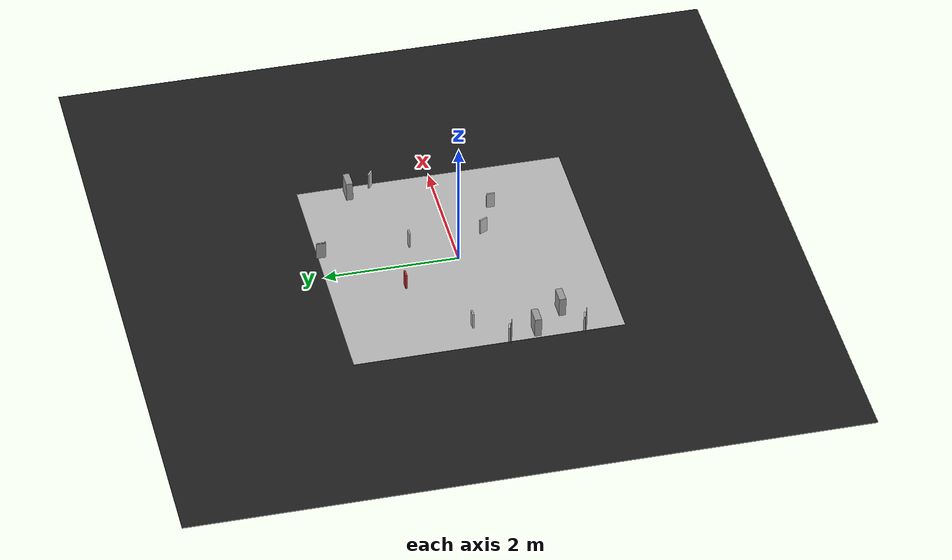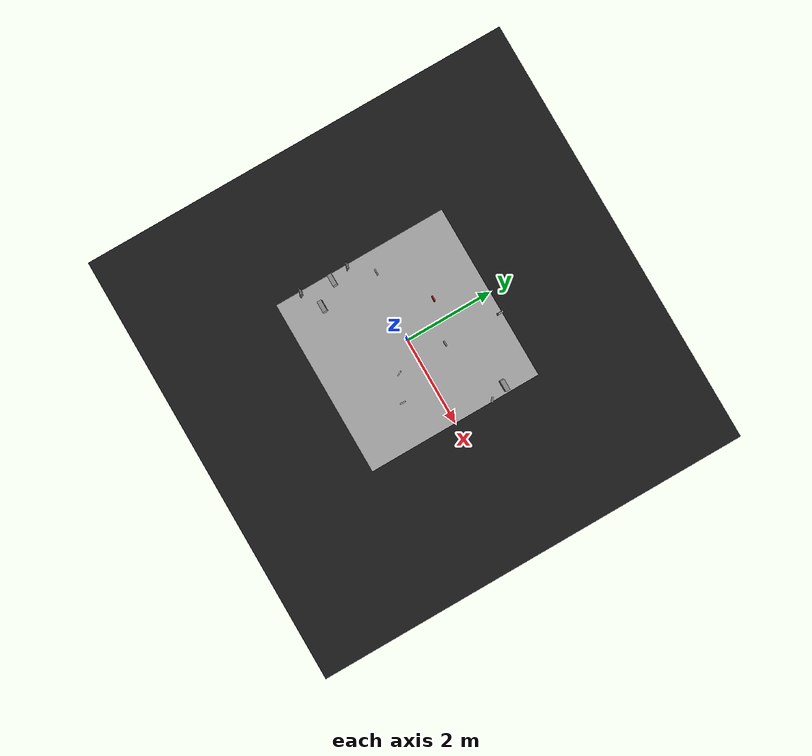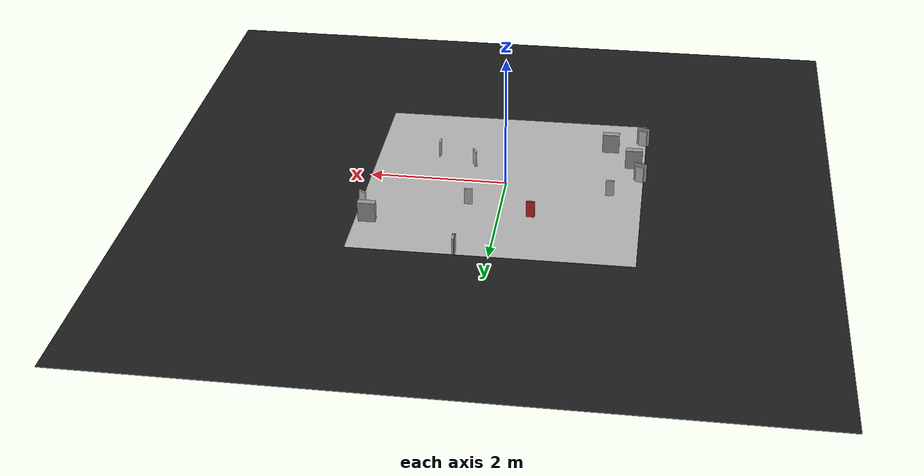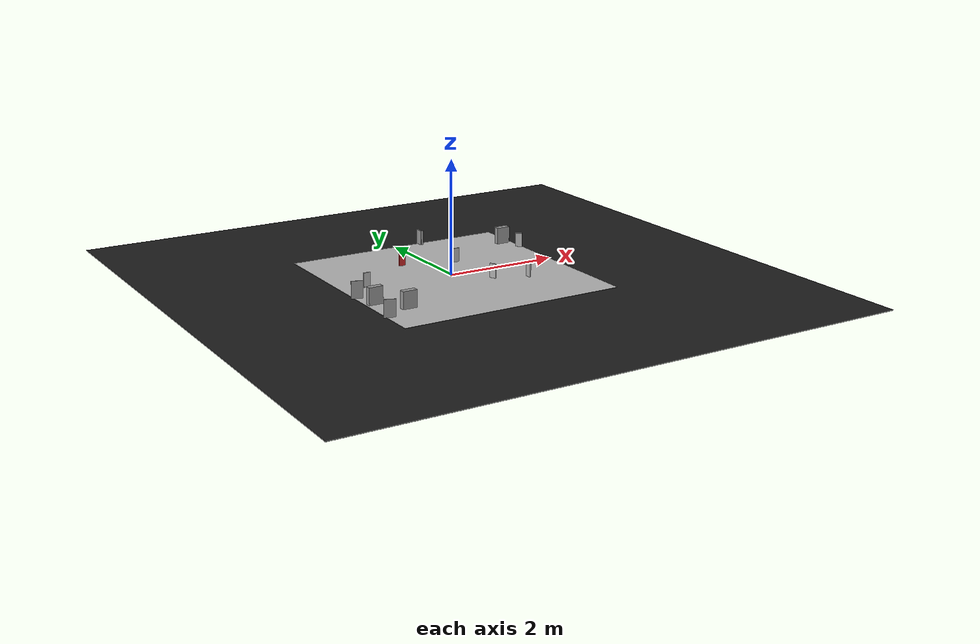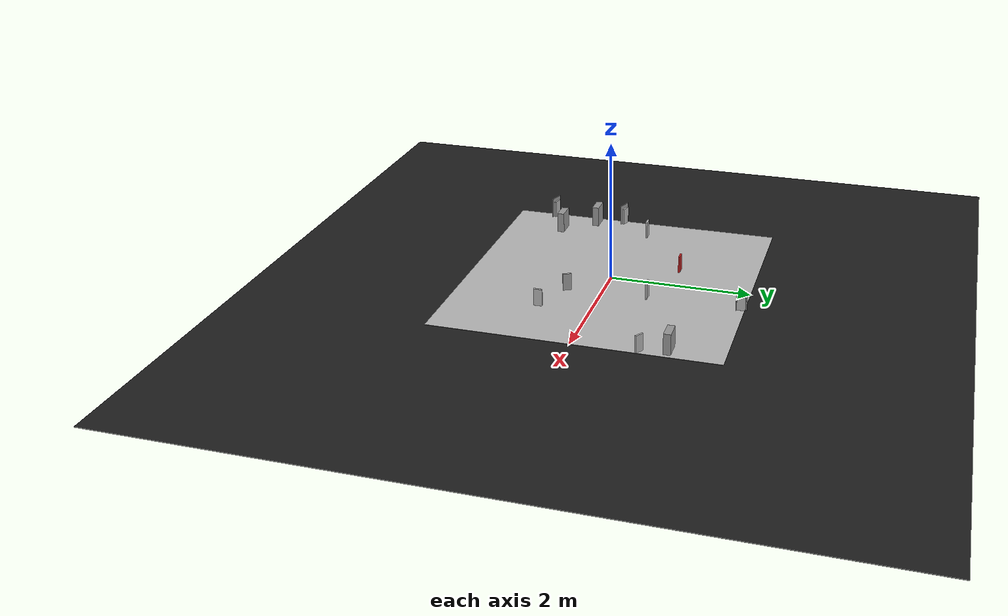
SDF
<sdf version="1.7">
 <world name="default">
  <scene>
   <ambient>0.8 0.8 0.8 1</ambient>
   <shadows>0</shadows>
   <grid>0</grid>
   <background>0.7 0.7 0.7 1</background>
  </scene>
  <model name="course">
   <static>1</static>
   <link name="course_link">
    <collision name="course_collision">
     <geometry><plane><normal>0 0 1</normal><size>4 4</size></plane></geometry>
     <surface><friction><ode><mu>100</mu><mu2>50</mu2></ode></friction></surface>
    </collision>
    <visual name="course_visual">
     <cast_shadows>0</cast_shadows>
     <geometry><plane><normal>0 0 1</normal><size>4 4</size></plane></geometry>
     <material>
      <script>
       <uri>model://turtlebot3_autorace_2020/course/materials/scripts</uri>
       <uri>model://turtlebot3_autorace_2020/course/materials/textures</uri>
       <name>course</name>
      </script>
     </material>
    </visual>
   </link>
   <pose>0 0 0 0 0 -3.14</pose>
  </model>
  <model name="traffic_parking">
   <static>1</static>
   <link name="box">
    <collision name="collision"><geometry><box><size>0.12 0.025 0.25</size></box></geometry></collision>
    <visual name="visual">
     <geometry><box><size>0.12 0.025 0.25</size></box></geometry>
     <material>
      <script>
       <uri>model://turtlebot3_autorace_2020/traffic_parking/materials/scripts</uri>
       <uri>model://turtlebot3_autorace_2020/traffic_parking/materials/textures</uri>
       <name>traffic_parking</name>
      </script>
     </material>
    </visual>
   </link>
   <pose>0.489828 1.9498 0.13 0 0 -1.57</pose>
  </model>
  <model name="traffic_construction">
   <static>1</static>
   <link name="box">
    <collision name="collision"><geometry><box><size>0.12 0.025 0.25</size></box></geometry></collision>
    <visual name="visual">
     <geometry><box><size>0.12 0.025 0.25</size></box></geometry>
     <material>
      <script>
       <uri>model://turtlebot3_autorace_2020/traffic_construction/materials/scripts</uri>
       <uri>model://turtlebot3_autorace_2020/traffic_construction/materials/textures</uri>
       <name>traffic_construction</name>
      </script>
     </material>
    </visual>
   </link>
   <pose>1.95069 0.900881 0.125 0 0 -0.600669</pose>
  </model>
  <model name="traffic_noentry">
   <static>1</static>
   <link name="box">
    <collision name="collision"><geometry><box><size>0.12 0.025 0.25</size></box></geometry></collision>
    <visual name="visual">
     <geometry><box><size>0.12 0.025 0.25</size></box></geometry>
     <material>
      <script>
       <uri>model://turtlebot3_autorace_2020/traffic_noentry/materials/scripts</uri>
       <uri>model://turtlebot3_autorace_2020/traffic_noentry/materials/textures</uri>
       <name>traffic_noentry</name>
      </script>
     </material>
    </visual>
   </link>
   <pose>0.464784 0.63954 0.125 0 -0 0</pose>
  </model>
  <model name="traffic_right">
   <static>1</static>
   <link name="box">
    <collision name="collision"><geometry><box><size>0.12 0.025 0.25</size></box></geometry></collision>
    <visual name="visual">
     <geometry><box><size>0.12 0.025 0.25</size></box></geometry>
     <material>
      <script>
       <uri>model://turtlebot3_autorace_2020/traffic_right/materials/scripts</uri>
       <uri>model://turtlebot3_autorace_2020/traffic_right/materials/textures</uri>
       <name>traffic_right</name>
      </script>
     </material>
    </visual>
   </link>
   <pose>1.08 -0.728 0.125 0 0 -1.57</pose>
  </model>
  <light name="sun" type="directional">
   <pose>0 0 10 0 -0 0</pose>
   <diffuse>0.8 0.8 0.8 1</diffuse>
   <specular>0.1 0.1 0.1 1</specular>
   <attenuation>
    <range>1000</range>
    <constant>0.9</constant>
    <linear>0.01</linear>
    <quadratic>0.001</quadratic>
   </attenuation>
   <direction>-0.5 0.5 -1</direction>
   <spot><inner_angle>0</inner_angle><outer_angle>0</outer_angle><falloff>0</falloff></spot>
  </light>
  <model name="ground2">
   <pose>0.234384 0.016409 -0.1 0 -0 0</pose>
   <static>1</static>
   <link name="ground">
    <collision name="ground_coll"><geometry><box><size>8 8 0.01</size></box></geometry></collision>
    <visual name="ground_vis">
     <geometry><box><size>10 10 0.01</size></box></geometry>
     <material>
      <script><uri>file://media/materials/scripts/gazebo.material</uri><name>Gazebo/FlatBlack</name></script>
     </material>
    </visual>
   </link>
  </model>
  <gravity>0 0 -9.8</gravity>
  <magnetic_field>6e-06 2.3e-05 -4.2e-05</magnetic_field>
  <atmosphere type="adiabatic"/>
  <physics name="default_physics" default="0" type="ode">
   <max_step_size>0.001</max_step_size>
   <real_time_factor>1</real_time_factor>
   <real_time_update_rate>1000</real_time_update_rate>
  </physics>
  <spherical_coordinates>
   <surface_model>EARTH_WGS84</surface_model>
   <latitude_deg>0</latitude_deg>
   <longitude_deg>0</longitude_deg>
   <elevation>0</elevation>
   <heading_deg>0</heading_deg>
  </spherical_coordinates>
  <light name="user_point_light_1" type="point">
   <pose>-1.64815 0.604519 1 0 -0 0</pose>
   <diffuse>0.5 0.5 0.5 1</diffuse>
   <specular>0.1 0.1 0.1 1</specular>
   <attenuation>
    <range>20</range>
    <constant>0.5</constant>
    <linear>0.01</linear>
    <quadratic>0.001</quadratic>
   </attenuation>
   <cast_shadows>0</cast_shadows>
   <direction>0 0 -1</direction>
   <spot><inner_angle>0</inner_angle><outer_angle>0</outer_angle><falloff>0</falloff></spot>
  </light>
  <light name="user_point_light_2" type="point">
   <pose>1.63854 1.69565 1 0 -0 0</pose>
   <diffuse>0.5 0.5 0.5 1</diffuse>
   <specular>0.1 0.1 0.1 1</specular>
   <attenuation>
    <range>20</range>
    <constant>0.5</constant>
    <linear>0.01</linear>
    <quadratic>0.001</quadratic>
   </attenuation>
   <cast_shadows>0</cast_shadows>
   <direction>0 0 -1</direction>
   <spot><inner_angle>0</inner_angle><outer_angle>0</outer_angle><falloff>0</falloff></spot>
  </light>
  <light name="user_point_light_3" type="point">
   <pose>0.42 -3.31 1 0 -0 0</pose>
   <diffuse>0.5 0.5 0.5 1</diffuse>
   <specular>0.1 0.1 0.1 1</specular>
   <attenuation>
    <range>20</range>
    <constant>0.5</constant>
    <linear>0.01</linear>
    <quadratic>0.001</quadratic>
   </attenuation>
   <cast_shadows>0</cast_shadows>
   <direction>0 0 -1</direction>
   <spot><inner_angle>0</inner_angle><outer_angle>0</outer_angle><falloff>0</falloff></spot>
  </light>
  <model name="barrier_3">
   <link name="link">
    <inertial>
     <mass>1</mass>
     <inertia>
      <ixx>0.166667</ixx>
      <ixy>0</ixy>
      <ixz>0</ixz>
      <iyy>0.166667</iyy>
      <iyz>0</iyz>
      <izz>0.166667</izz>
     </inertia>
    </inertial>
    <visual name="visual">
     <geometry><box><size>0.25 0.1 0.3</size></box></geometry>
     <material>
      <script><name>Gazebo/Grey</name><uri>file://media/materials/scripts/gazebo.material</uri></script>
      <shader type="pixel"><normal_map>__default__</normal_map></shader>
      <ambient>0.3 0.3 0.3 1</ambient>
      <diffuse>0.7 0.7 0.7 1</diffuse>
      <specular>0.01 0.01 0.01 1</specular>
      <emissive>0 0 0 1</emissive>
     </material>
    </visual>
    <collision name="collision">
     <geometry><box><size>0.25 0.1 0.3</size></box></geometry>
     <surface>
      <friction>
       <ode><mu>1</mu><mu2>1</mu2><fdir1>0 0 0</fdir1><slip1>0</slip1><slip2>0</slip2></ode>
       <torsional>
        <coefficient>1</coefficient>
        <patch_radius>0</patch_radius>
        <surface_radius>0</surface_radius>
        <use_patch_radius>1</use_patch_radius>
        <ode><slip>0</slip></ode>
       </torsional>
      </friction>
      <bounce><restitution_coefficient>0</restitution_coefficient><threshold>1e+06</threshold></bounce>
      <contact>
       <collide_without_contact>0</collide_without_contact>
       <collide_without_contact_bitmask>1</collide_without_contact_bitmask>
       <collide_bitmask>1</collide_bitmask>
       <ode>
        <soft_cfm>0</soft_cfm>
        <soft_erp>0.2</soft_erp>
        <kp>1e+13</kp>
        <kd>1</kd>
        <max_vel>0.01</max_vel>
        <min_depth>0</min_depth>
       </ode>
       <bullet>
        <split_impulse>1</split_impulse>
        <split_impulse_penetration_threshold>-0.01</split_impulse_penetration_threshold>
        <soft_cfm>0</soft_cfm>
        <soft_erp>0.2</soft_erp>
        <kp>1e+13</kp>
        <kd>1</kd>
       </bullet>
      </contact>
     </surface>
    </collision>
   </link>
   <static>0</static>
   <pose>1.81932 1.26325 0.149992 1e-06 2e-06 0.000149</pose>
  </model>
  <audio><device>default</device></audio>
  <model name="barrier_1_clone">
   <link name="link">
    <inertial>
     <mass>1</mass>
     <inertia>
      <ixx>0.166667</ixx>
      <ixy>0</ixy>
      <ixz>0</ixz>
      <iyy>0.166667</iyy>
      <iyz>0</iyz>
      <izz>0.166667</izz>
     </inertia>
    </inertial>
    <visual name="visual">
     <geometry><box><size>0.25 0.1 0.3</size></box></geometry>
     <material>
      <script><name>Gazebo/Grey</name><uri>file://media/materials/scripts/gazebo.material</uri></script>
      <shader type="pixel"><normal_map>__default__</normal_map></shader>
      <ambient>0.3 0.3 0.3 1</ambient>
      <diffuse>0.7 0.7 0.7 1</diffuse>
      <specular>0.01 0.01 0.01 1</specular>
      <emissive>0 0 0 1</emissive>
     </material>
    </visual>
    <collision name="collision">
     <geometry><box><size>0.25 0.1 0.3</size></box></geometry>
     <surface>
      <friction>
       <ode><mu>1</mu><mu2>1</mu2><fdir1>0 0 0</fdir1><slip1>0</slip1><slip2>0</slip2></ode>
       <torsional>
        <coefficient>1</coefficient>
        <patch_radius>0</patch_radius>
        <surface_radius>0</surface_radius>
        <use_patch_radius>1</use_patch_radius>
        <ode><slip>0</slip></ode>
       </torsional>
      </friction>
      <bounce><restitution_coefficient>0</restitution_coefficient><threshold>1e+06</threshold></bounce>
      <contact>
       <collide_without_contact>0</collide_without_contact>
       <collide_without_contact_bitmask>1</collide_without_contact_bitmask>
       <collide_bitmask>1</collide_bitmask>
       <ode>
        <soft_cfm>0</soft_cfm>
        <soft_erp>0.2</soft_erp>
        <kp>1e+13</kp>
        <kd>1</kd>
        <max_vel>0.01</max_vel>
        <min_depth>0</min_depth>
       </ode>
       <bullet>
        <split_impulse>1</split_impulse>
        <split_impulse_penetration_threshold>-0.01</split_impulse_penetration_threshold>
        <soft_cfm>0</soft_cfm>
        <soft_erp>0.2</soft_erp>
        <kp>1e+13</kp>
        <kd>1</kd>
       </bullet>
      </contact>
     </surface>
    </collision>
   </link>
   <static>0</static>
   <pose>-1.47127 -1.16914 0.149993 0 1e-06 0.001266</pose>
  </model>
  <model name="barrier_1_clone_clone">
   <link name="link">
    <inertial>
     <mass>1</mass>
     <inertia>
      <ixx>0.166667</ixx>
      <ixy>0</ixy>
      <ixz>0</ixz>
      <iyy>0.166667</iyy>
      <iyz>0</iyz>
      <izz>0.166667</izz>
     </inertia>
    </inertial>
    <visual name="visual">
     <geometry><box><size>0.25 0.1 0.3</size></box></geometry>
     <material>
      <script><name>Gazebo/Grey</name><uri>file://media/materials/scripts/gazebo.material</uri></script>
      <shader type="pixel"><normal_map>__default__</normal_map></shader>
      <ambient>0.3 0.3 0.3 1</ambient>
      <diffuse>0.7 0.7 0.7 1</diffuse>
      <specular>0.01 0.01 0.01 1</specular>
      <emissive>0 0 0 1</emissive>
     </material>
    </visual>
    <collision name="collision">
     <geometry><box><size>0.25 0.1 0.3</size></box></geometry>
     <surface>
      <friction>
       <ode><mu>1</mu><mu2>1</mu2><fdir1>0 0 0</fdir1><slip1>0</slip1><slip2>0</slip2></ode>
       <torsional>
        <coefficient>1</coefficient>
        <patch_radius>0</patch_radius>
        <surface_radius>0</surface_radius>
        <use_patch_radius>1</use_patch_radius>
        <ode><slip>0</slip></ode>
       </torsional>
      </friction>
      <bounce><restitution_coefficient>0</restitution_coefficient><threshold>1e+06</threshold></bounce>
      <contact>
       <collide_without_contact>0</collide_without_contact>
       <collide_without_contact_bitmask>1</collide_without_contact_bitmask>
       <collide_bitmask>1</collide_bitmask>
       <ode>
        <soft_cfm>0</soft_cfm>
        <soft_erp>0.2</soft_erp>
        <kp>1e+13</kp>
        <kd>1</kd>
        <max_vel>0.01</max_vel>
        <min_depth>0</min_depth>
       </ode>
       <bullet>
        <split_impulse>1</split_impulse>
        <split_impulse_penetration_threshold>-0.01</split_impulse_penetration_threshold>
        <soft_cfm>0</soft_cfm>
        <soft_erp>0.2</soft_erp>
        <kp>1e+13</kp>
        <kd>1</kd>
       </bullet>
      </contact>
     </surface>
    </collision>
   </link>
   <static>0</static>
   <pose>-1.83883 -0.720516 0.149992 1e-06 -2e-06 -0.001869</pose>
  </model>
  <model name="traffic_tunnel_clone_clone_clone">
   <pose>-1.94202 -0.300451 0.125001 -1e-06 2.3e-05 -0.294428</pose>
   <link name="box">
    <collision name="collision"><geometry><box><size>0.12 0.025 0.25</size></box></geometry></collision>
    <visual name="visual">
     <geometry><box><size>0.12 0.025 0.25</size></box></geometry>
     <material>
      <script>
       <uri>model://turtlebot3_autorace_2020/traffic_tunnel/materials/scripts</uri>
       <uri>model://turtlebot3_autorace_2020/traffic_tunnel/materials/textures</uri>
       <name>traffic_tunnel</name>
      </script>
     </material>
    </visual>
    <inertial>
     <inertia><ixx>1</ixx><ixy>0</ixy><ixz>0</ixz><iyy>1</iyy><iyz>0</iyz><izz>1</izz></inertia>
     <mass>1</mass>
    </inertial>
   </link>
  </model>
  <model name="traffic_tunnel_clone_clone_clone_clone_clone_clone">
   <pose>-1.94206 -1.40977 0.124991 -2e-06 -1e-05 -0.27574</pose>
   <link name="box">
    <collision name="collision"><geometry><box><size>0.12 0.025 0.25</size></box></geometry></collision>
    <visual name="visual">
     <geometry><box><size>0.12 0.025 0.25</size></box></geometry>
     <material>
      <script>
       <uri>model://turtlebot3_autorace_2020/traffic_tunnel/materials/scripts</uri>
       <uri>model://turtlebot3_autorace_2020/traffic_tunnel/materials/textures</uri>
       <name>traffic_tunnel</name>
      </script>
     </material>
    </visual>
    <inertial>
     <inertia><ixx>1</ixx><ixy>0</ixy><ixz>0</ixz><iyy>1</iyy><iyz>0</iyz><izz>1</izz></inertia>
     <mass>1</mass>
    </inertial>
   </link>
  </model>
  <model name="traffic_light_clone">
   <link name="traffic_light">
    <collision name="collision"><geometry><box><size>0.12 0.025 0.25</size></box></geometry></collision>
    <visual name="visual">
     <geometry><box><size>0.12 0.025 0.25</size></box></geometry>
     <material>
      <script>
       <uri>model://turtlebot3_autorace_2020/traffic_light/materials/scripts</uri>
       <uri>model://turtlebot3_autorace_2020/traffic_light/materials/textures</uri>
       <name>traffic_light_red</name>
      </script>
     </material>
    </visual>
   </link>
   <plugin name="traffic_light_plugin" filename="libtraffic_light_plugin.so"/>
   <static>1</static>
   <pose>-0.458958 0.896516 0.135 0 -0 3.14</pose>
  </model>
  <model name="traffic_right_clone">
   <static>1</static>
   <link name="box">
    <collision name="collision"><geometry><box><size>0.12 0.025 0.25</size></box></geometry></collision>
    <visual name="visual">
     <geometry><box><size>0.12 0.025 0.25</size></box></geometry>
     <material>
      <script>
       <uri>model://turtlebot3_autorace_2020/traffic_right/materials/scripts</uri>
       <uri>model://turtlebot3_autorace_2020/traffic_right/materials/textures</uri>
       <name>traffic_right</name>
      </script>
     </material>
    </visual>
   </link>
   <pose>0.521165 -0.4893 0.125 0 0 -1.13293</pose>
  </model>
  <model name="barrier_1_clone_clone_0">
   <link name="link">
    <inertial>
     <mass>1</mass>
     <inertia>
      <ixx>0.166667</ixx>
      <ixy>0</ixy>
      <ixz>0</ixz>
      <iyy>0.166667</iyy>
      <iyz>0</iyz>
      <izz>0.166667</izz>
     </inertia>
    </inertial>
    <visual name="visual">
     <geometry><box><size>0.197369 0.00819803 0.3</size></box></geometry>
     <material>
      <script><name>Gazebo/Grey</name><uri>file://media/materials/scripts/gazebo.material</uri></script>
      <shader type="pixel"><normal_map>__default__</normal_map></shader>
      <ambient>0.3 0.3 0.3 1</ambient>
      <diffuse>0.7 0.7 0.7 1</diffuse>
      <specular>0.01 0.01 0.01 1</specular>
      <emissive>0 0 0 1</emissive>
     </material>
    </visual>
    <collision name="collision">
     <geometry><box><size>0.197369 0.00819803 0.3</size></box></geometry>
     <surface>
      <friction>
       <ode><mu>1</mu><mu2>1</mu2><fdir1>0 0 0</fdir1><slip1>0</slip1><slip2>0</slip2></ode>
       <torsional>
        <coefficient>1</coefficient>
        <patch_radius>0</patch_radius>
        <surface_radius>0</surface_radius>
        <use_patch_radius>1</use_patch_radius>
        <ode><slip>0</slip></ode>
       </torsional>
      </friction>
      <bounce><restitution_coefficient>0</restitution_coefficient><threshold>1e+06</threshold></bounce>
      <contact>
       <collide_without_contact>0</collide_without_contact>
       <collide_without_contact_bitmask>1</collide_without_contact_bitmask>
       <collide_bitmask>1</collide_bitmask>
       <ode>
        <soft_cfm>0</soft_cfm>
        <soft_erp>0.2</soft_erp>
        <kp>1e+13</kp>
        <kd>1</kd>
        <max_vel>0.01</max_vel>
        <min_depth>0</min_depth>
       </ode>
       <bullet>
        <split_impulse>1</split_impulse>
        <split_impulse_penetration_threshold>-0.01</split_impulse_penetration_threshold>
        <soft_cfm>0</soft_cfm>
        <soft_erp>0.2</soft_erp>
        <kp>1e+13</kp>
        <kd>1</kd>
       </bullet>
      </contact>
     </surface>
    </collision>
   </link>
   <static>0</static>
   <pose>-1.9495 -1.43106 0.15 -1e-06 -0 -0.323808</pose>
  </model>
  <model name="traffic_right_clone_clone">
   <static>1</static>
   <link name="box">
    <collision name="collision"><geometry><box><size>0.12 0.025 0.25</size></box></geometry></collision>
    <visual name="visual">
     <geometry><box><size>0.12 0.025 0.25</size></box></geometry>
     <material>
      <script>
       <uri>model://turtlebot3_autorace_2020/traffic_right/materials/scripts</uri>
       <uri>model://turtlebot3_autorace_2020/traffic_right/materials/textures</uri>
       <name>traffic_right</name>
      </script>
     </material>
    </visual>
   </link>
   <pose>-1.53438 0.148343 0.125 0 0 -3.10859</pose>
  </model>
  <model name="barrier_1_clone_clone_0_clone">
   <link name="link">
    <inertial>
     <mass>1</mass>
     <inertia>
      <ixx>0.166667</ixx>
      <ixy>0</ixy>
      <ixz>0</ixz>
      <iyy>0.166667</iyy>
      <iyz>0</iyz>
      <izz>0.166667</izz>
     </inertia>
    </inertial>
    <visual name="visual">
     <geometry><box><size>0.197369 0.008198 0.3</size></box></geometry>
     <material>
      <script><name>Gazebo/Grey</name><uri>file://media/materials/scripts/gazebo.material</uri></script>
      <shader type="pixel"><normal_map>__default__</normal_map></shader>
      <ambient>0.3 0.3 0.3 1</ambient>
      <diffuse>0.7 0.7 0.7 1</diffuse>
      <specular>0.01 0.01 0.01 1</specular>
      <emissive>0 0 0 1</emissive>
     </material>
    </visual>
    <collision name="collision">
     <geometry><box><size>0.197369 0.008198 0.3</size></box></geometry>
     <surface>
      <friction>
       <ode><mu>1</mu><mu2>1</mu2><fdir1>0 0 0</fdir1><slip1>0</slip1><slip2>0</slip2></ode>
       <torsional>
        <coefficient>1</coefficient>
        <patch_radius>0</patch_radius>
        <surface_radius>0</surface_radius>
        <use_patch_radius>1</use_patch_radius>
        <ode><slip>0</slip></ode>
       </torsional>
      </friction>
      <bounce><restitution_coefficient>0</restitution_coefficient><threshold>1e+06</threshold></bounce>
      <contact>
       <collide_without_contact>0</collide_without_contact>
       <collide_without_contact_bitmask>1</collide_without_contact_bitmask>
       <collide_bitmask>1</collide_bitmask>
       <ode>
        <soft_cfm>0</soft_cfm>
        <soft_erp>0.2</soft_erp>
        <kp>1e+13</kp>
        <kd>1</kd>
        <max_vel>0.01</max_vel>
        <min_depth>0</min_depth>
       </ode>
       <bullet>
        <split_impulse>1</split_impulse>
        <split_impulse_penetration_threshold>-0.01</split_impulse_penetration_threshold>
        <soft_cfm>0</soft_cfm>
        <soft_erp>0.2</soft_erp>
        <kp>1e+13</kp>
        <kd>1</kd>
       </bullet>
      </contact>
     </surface>
    </collision>
   </link>
   <static>0</static>
   <pose>-1.95276 -0.32564 0.15 -4e-06 -0 -0.323808</pose>
  </model>
  <model name="barrier_1_clone_clone_0_clone_clone">
   <link name="link">
    <inertial>
     <mass>1</mass>
     <inertia>
      <ixx>0.166667</ixx>
      <ixy>0</ixy>
      <ixz>0</ixz>
      <iyy>0.166667</iyy>
      <iyz>0</iyz>
      <izz>0.166667</izz>
     </inertia>
    </inertial>
    <visual name="visual">
     <geometry><box><size>0.042503 0.008198 0.267485</size></box></geometry>
     <material>
      <script><name>Gazebo/Grey</name><uri>file://media/materials/scripts/gazebo.material</uri></script>
      <shader type="pixel"><normal_map>__default__</normal_map></shader>
      <ambient>0.3 0.3 0.3 1</ambient>
      <diffuse>0.7 0.7 0.7 1</diffuse>
      <specular>0.01 0.01 0.01 1</specular>
      <emissive>0 0 0 1</emissive>
     </material>
    </visual>
    <collision name="collision">
     <geometry><box><size>0.042503 0.008198 0.267485</size></box></geometry>
     <surface>
      <friction>
       <ode><mu>1</mu><mu2>1</mu2><fdir1>0 0 0</fdir1><slip1>0</slip1><slip2>0</slip2></ode>
       <torsional>
        <coefficient>1</coefficient>
        <patch_radius>0</patch_radius>
        <surface_radius>0</surface_radius>
        <use_patch_radius>1</use_patch_radius>
        <ode><slip>0</slip></ode>
       </torsional>
      </friction>
      <bounce><restitution_coefficient>0</restitution_coefficient><threshold>1e+06</threshold></bounce>
      <contact>
       <collide_without_contact>0</collide_without_contact>
       <collide_without_contact_bitmask>1</collide_without_contact_bitmask>
       <collide_bitmask>1</collide_bitmask>
       <ode>
        <soft_cfm>0</soft_cfm>
        <soft_erp>0.2</soft_erp>
        <kp>1e+13</kp>
        <kd>1</kd>
        <max_vel>0.01</max_vel>
        <min_depth>0</min_depth>
       </ode>
       <bullet>
        <split_impulse>1</split_impulse>
        <split_impulse_penetration_threshold>-0.01</split_impulse_penetration_threshold>
        <soft_cfm>0</soft_cfm>
        <soft_erp>0.2</soft_erp>
        <kp>1e+13</kp>
        <kd>1</kd>
       </bullet>
      </contact>
     </surface>
    </collision>
   </link>
   <static>0</static>
   <pose>0.490127 1.8854 0.133742 1.6e-05 -2e-06 -0.01706</pose>
  </model>
  <model name="barrier_1_clone_clone_0_clone_clone_clone">
   <link name="link">
    <inertial>
     <mass>1</mass>
     <inertia>
      <ixx>0.166667</ixx>
      <ixy>0</ixy>
      <ixz>0</ixz>
      <iyy>0.166667</iyy>
      <iyz>0</iyz>
      <izz>0.166667</izz>
     </inertia>
    </inertial>
    <visual name="visual">
     <geometry><box><size>0.143479 0.008198 0.267485</size></box></geometry>
     <material>
      <script><name>Gazebo/Grey</name><uri>file://media/materials/scripts/gazebo.material</uri></script>
      <shader type="pixel"><normal_map>__default__</normal_map></shader>
      <ambient>0.3 0.3 0.3 1</ambient>
      <diffuse>0.7 0.7 0.7 1</diffuse>
      <specular>0.01 0.01 0.01 1</specular>
      <emissive>0 0 0 1</emissive>
     </material>
    </visual>
    <collision name="collision">
     <geometry><box><size>0.143479 0.008198 0.267485</size></box></geometry>
     <surface>
      <friction>
       <ode><mu>1</mu><mu2>1</mu2><fdir1>0 0 0</fdir1><slip1>0</slip1><slip2>0</slip2></ode>
       <torsional>
        <coefficient>1</coefficient>
        <patch_radius>0</patch_radius>
        <surface_radius>0</surface_radius>
        <use_patch_radius>1</use_patch_radius>
        <ode><slip>0</slip></ode>
       </torsional>
      </friction>
      <bounce><restitution_coefficient>0</restitution_coefficient><threshold>1e+06</threshold></bounce>
      <contact>
       <collide_without_contact>0</collide_without_contact>
       <collide_without_contact_bitmask>1</collide_without_contact_bitmask>
       <collide_bitmask>1</collide_bitmask>
       <ode>
        <soft_cfm>0</soft_cfm>
        <soft_erp>0.2</soft_erp>
        <kp>1e+13</kp>
        <kd>1</kd>
        <max_vel>0.01</max_vel>
        <min_depth>0</min_depth>
       </ode>
       <bullet>
        <split_impulse>1</split_impulse>
        <split_impulse_penetration_threshold>-0.01</split_impulse_penetration_threshold>
        <soft_cfm>0</soft_cfm>
        <soft_erp>0.2</soft_erp>
        <kp>1e+13</kp>
        <kd>1</kd>
       </bullet>
      </contact>
     </surface>
    </collision>
   </link>
   <static>0</static>
   <pose>0.465856 1.95393 0.133743 -2e-06 1e-06 -1.58694</pose>
  </model>
 </world>
</sdf>
